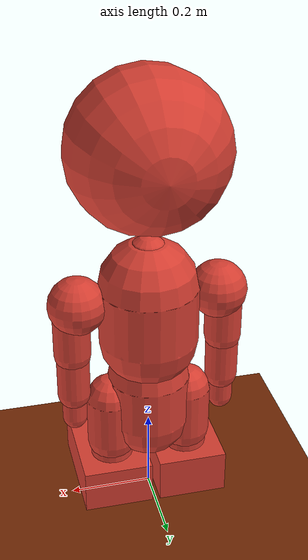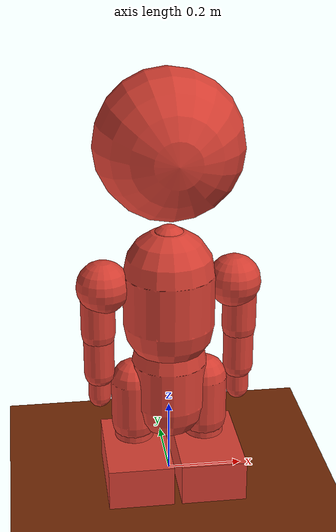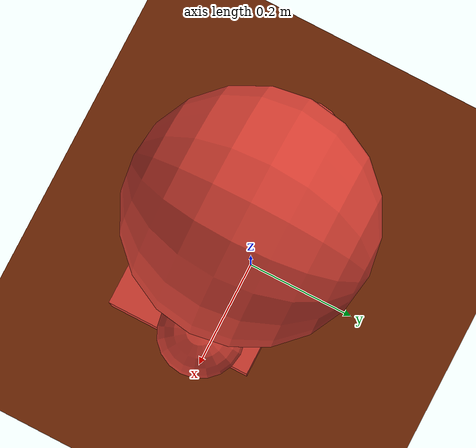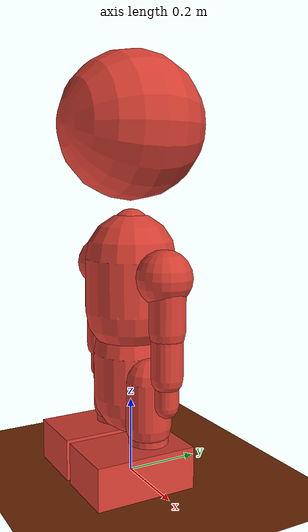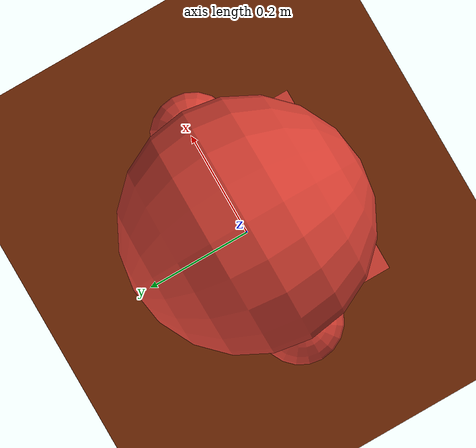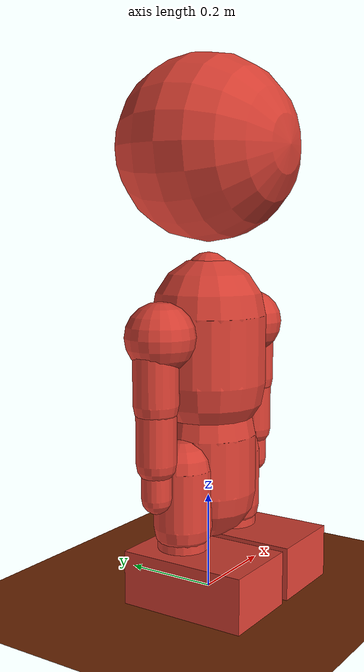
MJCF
<mujoco model="aBot humanoid (chibi, 1.22 m, single-source MJCF)">
  <!-- Generated by scripts/blender_humanoid/mjcf_generator.py from
       humanoid_spec.py (single procedural source of truth shared with
       build_humanoid.py). Do NOT hand-edit: regenerate instead. -->
  <compiler angle="radian" autolimits="true"/>
  <option timestep="0.002" integrator="implicitfast"/>
  <default>
    <geom condim="3" friction="1.0 0.005 0.0001" margin="0.002"/>
  </default>
  <worldbody>
    <geom name="floor" type="plane" size="3 3 0.05" rgba="0.45 0.16 0.02 1"
          friction="1.2 0.005 0.0001"/>
    <body name="root" pos="0.000000 0.000000 0.025000" quat="0.707107 0.707107 0.000000 0.000000">
      <freejoint name="root.free"/>
      <geom name="root_c0" density="276.427006" rgba="0.85 0.25 0.20 1" type="capsule" pos="0.000000 0.250000 0.000000" quat="0.707107 -0.707107 0.000000 0.000000" size="0.100000 0.060000"/>
      <body name="spine" pos="0.000000 0.240000 0.000000" quat="1.000000 0.000000 0.000000 0.000000">
        <joint name="spine.z" type="hinge" axis="0.000000 0.000000 1.000000" pos="0 0 0"
               range="-0.350000 0.350000" damping="1.500000" frictionloss="0.500000"
               armature="0.02"/>
        <joint name="spine.y" type="hinge" axis="0.000000 1.000000 0.000000" pos="0 0 0"
               range="-0.500000 0.500000" damping="1.500000" frictionloss="0.500000"
               armature="0.02"/>
        <joint name="spine.x" type="hinge" axis="1.000000 0.000000 0.000000" pos="0 0 0"
               range="-0.600000 0.600000" damping="1.500000" frictionloss="0.500000"
               armature="0.02"/>
        <geom name="spine_c0" density="114.617757" rgba="0.85 0.25 0.20 1" type="capsule" pos="0.000000 0.100000 0.000000" quat="0.707107 -0.707107 0.000000 0.000000" size="0.090000 0.060000"/>
        <body name="chest" pos="0.000000 0.160000 0.000000" quat="1.000000 0.000000 0.000000 0.000000">
          <joint name="chest.z" type="hinge" axis="0.000000 0.000000 1.000000" pos="0 0 0"
                 range="-0.350000 0.350000" damping="1.500000" frictionloss="0.500000"
                 armature="0.02"/>
          <joint name="chest.y" type="hinge" axis="0.000000 1.000000 0.000000" pos="0 0 0"
                 range="-0.500000 0.500000" damping="1.500000" frictionloss="0.500000"
                 armature="0.02"/>
          <joint name="chest.x" type="hinge" axis="1.000000 0.000000 0.000000" pos="0 0 0"
                 range="-0.600000 0.600000" damping="1.500000" frictionloss="0.500000"
                 armature="0.02"/>
          <geom name="chest_c0" density="117.892550" rgba="0.85 0.25 0.20 1" type="capsule" pos="0.000000 0.090000 0.000000" quat="0.707107 -0.707107 0.000000 0.000000" size="0.120000 0.070000"/>
          <body name="neck" pos="0.000000 0.180000 0.000000" quat="1.000000 0.000000 0.000000 0.000000">
            <joint name="neck.z" type="hinge" axis="0.000000 0.000000 1.000000" pos="0 0 0"
                   range="-0.350000 0.350000" damping="1.200000" frictionloss="0.050000"
                   armature="0.02"/>
            <joint name="neck.y" type="hinge" axis="0.000000 1.000000 0.000000" pos="0 0 0"
                   range="-0.600000 0.600000" damping="1.200000" frictionloss="0.050000"
                   armature="0.02"/>
            <joint name="neck.x" type="hinge" axis="1.000000 0.000000 0.000000" pos="0 0 0"
                   range="-0.500000 0.500000" damping="1.200000" frictionloss="0.050000"
                   armature="0.02"/>
            <geom name="neck_c0" density="134.813599" rgba="0.85 0.25 0.20 1" type="capsule" pos="0.000000 0.022500 0.000000" quat="0.707107 -0.707107 0.000000 0.000000" size="0.050000 0.037500"/>
            <body name="head" pos="0.000000 0.060000 0.000000" quat="1.000000 0.000000 0.000000 0.000000">
              <joint name="head.z" type="hinge" axis="0.000000 0.000000 1.000000" pos="0 0 0"
                     range="-0.450000 0.450000" damping="3.000000" frictionloss="0.050000"
                     armature="0.02"/>
              <joint name="head.y" type="hinge" axis="0.000000 1.000000 0.000000" pos="0 0 0"
                     range="-0.900000 0.900000" damping="3.000000" frictionloss="0.050000"
                     armature="0.02"/>
              <joint name="head.x" type="hinge" axis="1.000000 0.000000 0.000000" pos="0 0 0"
                     range="-0.700000 0.700000" damping="3.000000" frictionloss="0.050000"
                     armature="0.02"/>
              <geom name="head_c0" density="104.417152" rgba="0.85 0.25 0.20 1" type="sphere" pos="0.000000 0.260000 0.000000" size="0.190000"/>
            </body>
          </body>
          <body name="shoulder.L" pos="-0.040000 0.130000 0.000000" quat="0.500000 -0.500000 0.500000 0.500000">
            <joint name="shoulder.L.z" type="hinge" axis="0.000000 0.000000 1.000000" pos="0 0 0"
                   range="-0.600000 0.600000" damping="0.600000" frictionloss="0.250000"
                   armature="0.02"/>
            <joint name="shoulder.L.y" type="hinge" axis="0.000000 1.000000 0.000000" pos="0 0 0"
                   range="-0.500000 0.500000" damping="0.600000" frictionloss="0.250000"
                   armature="0.02"/>
            <joint name="shoulder.L.x" type="hinge" axis="1.000000 0.000000 0.000000" pos="0 0 0"
                   range="-0.700000 0.700000" damping="0.600000" frictionloss="0.250000"
                   armature="0.02"/>
            <geom name="shoulder.L_c0" density="83.521544" rgba="0.85 0.25 0.20 1" type="sphere" pos="0.000000 0.130000 0.000000" size="0.070000"/>
            <body name="upper_arm.L" pos="0.000000 0.145000 0.000000" quat="-0.500000 0.500000 -0.500000 0.500000">
              <joint name="upper_arm.L.z" type="hinge" axis="0.000000 0.000000 1.000000" pos="0 0 0"
                     range="-1.650000 1.650000" damping="0.800000" frictionloss="0.350000"
                     armature="0.02"/>
              <joint name="upper_arm.L.y" type="hinge" axis="0.000000 1.000000 0.000000" pos="0 0 0"
                     range="-0.450000 0.450000" damping="0.800000" frictionloss="0.350000"
                     armature="0.02"/>
              <joint name="upper_arm.L.x" type="hinge" axis="1.000000 0.000000 0.000000" pos="0 0 0"
                     range="-1.000000 1.400000" damping="0.800000" frictionloss="0.350000"
                     armature="0.02"/>
              <geom name="upper_arm.L_c0" density="297.386614" rgba="0.85 0.25 0.20 1" type="capsule" pos="0.000000 0.067500 0.000000" quat="0.707107 -0.707107 0.000000 0.000000" size="0.045000 0.062500"/>
              <body name="forearm.L" pos="0.000000 0.135000 0.000000" quat="1.000000 0.000000 0.000000 0.000000">
                <joint name="forearm.L.z" type="hinge" axis="0.000000 0.000000 1.000000" pos="0 0 0"
                       range="-1.650000 1.650000" damping="0.600000" frictionloss="0.300000"
                       armature="0.02"/>
                <joint name="forearm.L.y" type="hinge" axis="0.000000 1.000000 0.000000" pos="0 0 0"
                       range="-0.350000 0.350000" damping="0.600000" frictionloss="0.300000"
                       armature="0.02"/>
                <joint name="forearm.L.x" type="hinge" axis="1.000000 0.000000 0.000000" pos="0 0 0"
                       range="-0.300000 1.500000" damping="0.600000" frictionloss="0.300000"
                       armature="0.02"/>
                <geom name="forearm.L_c0" density="304.505631" rgba="0.85 0.25 0.20 1" type="capsule" pos="0.000000 0.055000 0.000000" quat="0.707107 -0.707107 0.000000 0.000000" size="0.040000 0.055000"/>
                <body name="hand.L" pos="0.000000 0.115000 0.000000" quat="1.000000 0.000000 0.000000 0.000000">
                  <joint name="hand.L.z" type="hinge" axis="0.000000 0.000000 1.000000" pos="0 0 0"
                         range="-0.600000 0.600000" damping="0.200000" frictionloss="0.100000"
                         armature="0.02"/>
                  <joint name="hand.L.y" type="hinge" axis="0.000000 1.000000 0.000000" pos="0 0 0"
                         range="-0.600000 0.600000" damping="0.200000" frictionloss="0.100000"
                         armature="0.02"/>
                  <joint name="hand.L.x" type="hinge" axis="1.000000 0.000000 0.000000" pos="0 0 0"
                         range="-0.600000 0.600000" damping="0.200000" frictionloss="0.100000"
                         armature="0.02"/>
                  <geom name="hand.L_c0" density="424.413182" rgba="0.85 0.25 0.20 1" type="capsule" pos="0.000000 0.035000 0.000000" quat="0.707107 -0.707107 0.000000 0.000000" size="0.030000 0.030000"/>
                </body>
              </body>
            </body>
          </body>
          <body name="shoulder.R" pos="0.040000 0.130000 0.000000" quat="-0.500000 0.500000 0.500000 0.500000">
            <joint name="shoulder.R.z" type="hinge" axis="0.000000 0.000000 1.000000" pos="0 0 0"
                   range="-0.600000 0.600000" damping="0.600000" frictionloss="0.250000"
                   armature="0.02"/>
            <joint name="shoulder.R.y" type="hinge" axis="0.000000 1.000000 0.000000" pos="0 0 0"
                   range="-0.500000 0.500000" damping="0.600000" frictionloss="0.250000"
                   armature="0.02"/>
            <joint name="shoulder.R.x" type="hinge" axis="1.000000 0.000000 0.000000" pos="0 0 0"
                   range="-0.700000 0.700000" damping="0.600000" frictionloss="0.250000"
                   armature="0.02"/>
            <geom name="shoulder.R_c0" density="83.521544" rgba="0.85 0.25 0.20 1" type="sphere" pos="0.000000 0.130000 0.000000" size="0.070000"/>
            <body name="upper_arm.R" pos="0.000000 0.145000 0.000000" quat="0.500000 -0.500000 -0.500000 0.500000">
              <joint name="upper_arm.R.z" type="hinge" axis="0.000000 0.000000 1.000000" pos="0 0 0"
                     range="-1.650000 1.650000" damping="0.800000" frictionloss="0.350000"
                     armature="0.02"/>
              <joint name="upper_arm.R.y" type="hinge" axis="0.000000 1.000000 0.000000" pos="0 0 0"
                     range="-0.450000 0.450000" damping="0.800000" frictionloss="0.350000"
                     armature="0.02"/>
              <joint name="upper_arm.R.x" type="hinge" axis="1.000000 0.000000 0.000000" pos="0 0 0"
                     range="-1.000000 1.400000" damping="0.800000" frictionloss="0.350000"
                     armature="0.02"/>
              <geom name="upper_arm.R_c0" density="297.386614" rgba="0.85 0.25 0.20 1" type="capsule" pos="0.000000 0.067500 0.000000" quat="0.707107 -0.707107 0.000000 0.000000" size="0.045000 0.062500"/>
              <body name="forearm.R" pos="0.000000 0.135000 0.000000" quat="1.000000 0.000000 0.000000 0.000000">
                <joint name="forearm.R.z" type="hinge" axis="0.000000 0.000000 1.000000" pos="0 0 0"
                       range="-1.650000 1.650000" damping="0.600000" frictionloss="0.300000"
                       armature="0.02"/>
                <joint name="forearm.R.y" type="hinge" axis="0.000000 1.000000 0.000000" pos="0 0 0"
                       range="-0.350000 0.350000" damping="0.600000" frictionloss="0.300000"
                       armature="0.02"/>
                <joint name="forearm.R.x" type="hinge" axis="1.000000 0.000000 0.000000" pos="0 0 0"
                       range="-0.300000 1.500000" damping="0.600000" frictionloss="0.300000"
                       armature="0.02"/>
                <geom name="forearm.R_c0" density="304.505631" rgba="0.85 0.25 0.20 1" type="capsule" pos="0.000000 0.055000 0.000000" quat="0.707107 -0.707107 0.000000 0.000000" size="0.040000 0.055000"/>
                <body name="hand.R" pos="0.000000 0.115000 0.000000" quat="1.000000 0.000000 0.000000 0.000000">
                  <joint name="hand.R.z" type="hinge" axis="0.000000 0.000000 1.000000" pos="0 0 0"
                         range="-0.600000 0.600000" damping="0.200000" frictionloss="0.100000"
                         armature="0.02"/>
                  <joint name="hand.R.y" type="hinge" axis="0.000000 1.000000 0.000000" pos="0 0 0"
                         range="-0.600000 0.600000" damping="0.200000" frictionloss="0.100000"
                         armature="0.02"/>
                  <joint name="hand.R.x" type="hinge" axis="1.000000 0.000000 0.000000" pos="0 0 0"
                         range="-0.600000 0.600000" damping="0.200000" frictionloss="0.100000"
                         armature="0.02"/>
                  <geom name="hand.R_c0" density="424.413182" rgba="0.85 0.25 0.20 1" type="capsule" pos="0.000000 0.035000 0.000000" quat="0.707107 -0.707107 0.000000 0.000000" size="0.030000 0.030000"/>
                </body>
              </body>
            </body>
          </body>
        </body>
      </body>
      <body name="thigh.L" pos="-0.095000 0.260000 0.000000" quat="0.000000 1.000000 0.000000 0.000000">
        <joint name="thigh.L.z" type="hinge" axis="0.000000 0.000000 1.000000" pos="0 0 0"
               range="-0.450000 0.450000" damping="1.500000" frictionloss="0.600000"
               armature="0.02"/>
        <joint name="thigh.L.y" type="hinge" axis="0.000000 1.000000 0.000000" pos="0 0 0"
               range="-0.350000 0.350000" damping="1.500000" frictionloss="0.600000"
               armature="0.02"/>
        <joint name="thigh.L.x" type="hinge" axis="1.000000 0.000000 0.000000" pos="0 0 0"
               range="-1.200000 1.300000" damping="1.500000" frictionloss="0.600000"
               armature="0.02"/>
        <geom name="thigh.L_c0" density="243.153385" rgba="0.85 0.25 0.20 1" type="capsule" pos="0.000000 0.065000 0.000000" quat="0.707107 -0.707107 0.000000 0.000000" size="0.060000 0.060000"/>
        <body name="shin.L" pos="0.000000 0.130000 0.000000" quat="1.000000 0.000000 0.000000 0.000000">
          <joint name="shin.L.z" type="hinge" axis="0.000000 0.000000 1.000000" pos="0 0 0"
                 range="-0.300000 0.300000" damping="1.200000" frictionloss="0.500000"
                 armature="0.02"/>
          <joint name="shin.L.y" type="hinge" axis="0.000000 1.000000 0.000000" pos="0 0 0"
                 range="-0.250000 0.250000" damping="1.200000" frictionloss="0.500000"
                 armature="0.02"/>
          <joint name="shin.L.x" type="hinge" axis="1.000000 0.000000 0.000000" pos="0 0 0"
                 range="-1.600000 0.080000" damping="1.200000" frictionloss="0.500000"
                 armature="0.02"/>
          <geom name="shin.L_c0" density="332.467587" rgba="0.85 0.25 0.20 1" type="capsule" pos="0.000000 0.050000 0.000000" quat="0.707107 -0.707107 0.000000 0.000000" size="0.052000 0.045000"/>
          <body name="foot.L" pos="0.000000 0.100000 0.000000" quat="0.802293 -0.596930 0.000000 0.000000">
            <joint name="foot.L.z" type="hinge" axis="0.000000 0.000000 1.000000" pos="0 0 0"
                   range="-0.350000 0.350000" damping="0.500000" frictionloss="0.250000"
                   armature="0.02"/>
            <joint name="foot.L.y" type="hinge" axis="0.000000 1.000000 0.000000" pos="0 0 0"
                   range="-0.300000 0.300000" damping="0.500000" frictionloss="0.250000"
                   armature="0.02"/>
            <joint name="foot.L.x" type="hinge" axis="1.000000 0.000000 0.000000" pos="0 0 0"
                   range="-0.600000 0.800000" damping="0.500000" frictionloss="0.250000"
                   armature="0.02"/>
            <geom name="foot.L_c0" density="198.059022" rgba="0.85 0.25 0.20 1" type="box" pos="0.000000 0.046455 -0.019157" quat="0.145213 0.989400 0.000000 0.000000" size="0.085000 0.135000 0.055000"/>
            <geom name="foot.L_c1" density="5729.577951" rgba="0.10 0.35 0.45 1" contype="0" conaffinity="0" group="3" type="sphere" pos="0.000000 0.049424 0.008142" size="0.050000"/>
          </body>
        </body>
      </body>
      <body name="thigh.R" pos="0.095000 0.260000 0.000000" quat="0.000000 1.000000 0.000000 0.000000">
        <joint name="thigh.R.z" type="hinge" axis="0.000000 0.000000 1.000000" pos="0 0 0"
               range="-0.450000 0.450000" damping="1.500000" frictionloss="0.600000"
               armature="0.02"/>
        <joint name="thigh.R.y" type="hinge" axis="0.000000 1.000000 0.000000" pos="0 0 0"
               range="-0.350000 0.350000" damping="1.500000" frictionloss="0.600000"
               armature="0.02"/>
        <joint name="thigh.R.x" type="hinge" axis="1.000000 0.000000 0.000000" pos="0 0 0"
               range="-1.200000 1.300000" damping="1.500000" frictionloss="0.600000"
               armature="0.02"/>
        <geom name="thigh.R_c0" density="243.153385" rgba="0.85 0.25 0.20 1" type="capsule" pos="0.000000 0.065000 0.000000" quat="0.707107 -0.707107 0.000000 0.000000" size="0.060000 0.060000"/>
        <body name="shin.R" pos="0.000000 0.130000 0.000000" quat="1.000000 0.000000 0.000000 0.000000">
          <joint name="shin.R.z" type="hinge" axis="0.000000 0.000000 1.000000" pos="0 0 0"
                 range="-0.300000 0.300000" damping="1.200000" frictionloss="0.500000"
                 armature="0.02"/>
          <joint name="shin.R.y" type="hinge" axis="0.000000 1.000000 0.000000" pos="0 0 0"
                 range="-0.250000 0.250000" damping="1.200000" frictionloss="0.500000"
                 armature="0.02"/>
          <joint name="shin.R.x" type="hinge" axis="1.000000 0.000000 0.000000" pos="0 0 0"
                 range="-1.600000 0.080000" damping="1.200000" frictionloss="0.500000"
                 armature="0.02"/>
          <geom name="shin.R_c0" density="332.467587" rgba="0.85 0.25 0.20 1" type="capsule" pos="0.000000 0.050000 0.000000" quat="0.707107 -0.707107 0.000000 0.000000" size="0.052000 0.045000"/>
          <body name="foot.R" pos="0.000000 0.100000 0.000000" quat="0.802293 -0.596930 0.000000 0.000000">
            <joint name="foot.R.z" type="hinge" axis="0.000000 0.000000 1.000000" pos="0 0 0"
                   range="-0.350000 0.350000" damping="0.500000" frictionloss="0.250000"
                   armature="0.02"/>
            <joint name="foot.R.y" type="hinge" axis="0.000000 1.000000 0.000000" pos="0 0 0"
                   range="-0.300000 0.300000" damping="0.500000" frictionloss="0.250000"
                   armature="0.02"/>
            <joint name="foot.R.x" type="hinge" axis="1.000000 0.000000 0.000000" pos="0 0 0"
                   range="-0.600000 0.800000" damping="0.500000" frictionloss="0.250000"
                   armature="0.02"/>
            <geom name="foot.R_c0" density="198.059022" rgba="0.85 0.25 0.20 1" type="box" pos="0.000000 0.046455 -0.019157" quat="0.145213 0.989400 0.000000 0.000000" size="0.085000 0.135000 0.055000"/>
            <geom name="foot.R_c1" density="5729.577951" rgba="0.10 0.35 0.45 1" contype="0" conaffinity="0" group="3" type="sphere" pos="0.000000 0.049424 0.008142" size="0.050000"/>
          </body>
        </body>
      </body>
    </body>
  </worldbody>
  <contact>
    <exclude body1="root" body2="chest"/>
    <exclude body1="root" body2="shin.L"/>
    <exclude body1="root" body2="shin.R"/>
    <exclude body1="root" body2="thigh.L"/>
    <exclude body1="root" body2="thigh.R"/>
    <exclude body1="spine" body2="thigh.L"/>
    <exclude body1="spine" body2="thigh.R"/>
    <exclude body1="thigh.L" body2="foot.L"/>
    <exclude body1="thigh.R" body2="foot.R"/>
    <exclude body1="forearm.L" body2="thigh.L"/>
    <exclude body1="forearm.R" body2="thigh.R"/>
    <exclude body1="hand.L" body2="thigh.L"/>
    <exclude body1="hand.R" body2="thigh.R"/>
  </contact>
  <actuator>
    <position name="servo_spine.z" joint="spine.z" kp="250.000000"
              ctrlrange="-0.350000 0.350000" forcelimited="true"
              forcerange="-80.000000 80.000000"/>
    <position name="servo_spine.y" joint="spine.y" kp="250.000000"
              ctrlrange="-0.500000 0.500000" forcelimited="true"
              forcerange="-80.000000 80.000000"/>
    <position name="servo_spine.x" joint="spine.x" kp="250.000000"
              ctrlrange="-0.600000 0.600000" forcelimited="true"
              forcerange="-80.000000 80.000000"/>
    <position name="servo_chest.z" joint="chest.z" kp="250.000000"
              ctrlrange="-0.350000 0.350000" forcelimited="true"
              forcerange="-80.000000 80.000000"/>
    <position name="servo_chest.y" joint="chest.y" kp="250.000000"
              ctrlrange="-0.500000 0.500000" forcelimited="true"
              forcerange="-80.000000 80.000000"/>
    <position name="servo_chest.x" joint="chest.x" kp="250.000000"
              ctrlrange="-0.600000 0.600000" forcelimited="true"
              forcerange="-80.000000 80.000000"/>
    <position name="servo_neck.z" joint="neck.z" kp="50.000000"
              ctrlrange="-0.350000 0.350000" forcelimited="true"
              forcerange="-20.000000 20.000000"/>
    <position name="servo_neck.y" joint="neck.y" kp="50.000000"
              ctrlrange="-0.600000 0.600000" forcelimited="true"
              forcerange="-20.000000 20.000000"/>
    <position name="servo_neck.x" joint="neck.x" kp="50.000000"
              ctrlrange="-0.500000 0.500000" forcelimited="true"
              forcerange="-20.000000 20.000000"/>
    <position name="servo_head.z" joint="head.z" kp="60.000000"
              ctrlrange="-0.450000 0.450000" forcelimited="true"
              forcerange="-20.000000 20.000000"/>
    <position name="servo_head.y" joint="head.y" kp="60.000000"
              ctrlrange="-0.900000 0.900000" forcelimited="true"
              forcerange="-20.000000 20.000000"/>
    <position name="servo_head.x" joint="head.x" kp="60.000000"
              ctrlrange="-0.700000 0.700000" forcelimited="true"
              forcerange="-20.000000 20.000000"/>
    <position name="servo_shoulder.L.z" joint="shoulder.L.z" kp="60.000000"
              ctrlrange="-0.600000 0.600000" forcelimited="true"
              forcerange="-25.000000 25.000000"/>
    <position name="servo_shoulder.L.y" joint="shoulder.L.y" kp="60.000000"
              ctrlrange="-0.500000 0.500000" forcelimited="true"
              forcerange="-25.000000 25.000000"/>
    <position name="servo_shoulder.L.x" joint="shoulder.L.x" kp="60.000000"
              ctrlrange="-0.700000 0.700000" forcelimited="true"
              forcerange="-25.000000 25.000000"/>
    <position name="servo_upper_arm.L.z" joint="upper_arm.L.z" kp="100.000000"
              ctrlrange="-1.650000 1.650000" forcelimited="true"
              forcerange="-40.000000 40.000000"/>
    <position name="servo_upper_arm.L.y" joint="upper_arm.L.y" kp="100.000000"
              ctrlrange="-0.450000 0.450000" forcelimited="true"
              forcerange="-40.000000 40.000000"/>
    <position name="servo_upper_arm.L.x" joint="upper_arm.L.x" kp="100.000000"
              ctrlrange="-1.000000 1.400000" forcelimited="true"
              forcerange="-40.000000 40.000000"/>
    <position name="servo_forearm.L.z" joint="forearm.L.z" kp="70.000000"
              ctrlrange="-1.650000 1.650000" forcelimited="true"
              forcerange="-30.000000 30.000000"/>
    <position name="servo_forearm.L.y" joint="forearm.L.y" kp="70.000000"
              ctrlrange="-0.350000 0.350000" forcelimited="true"
              forcerange="-30.000000 30.000000"/>
    <position name="servo_forearm.L.x" joint="forearm.L.x" kp="70.000000"
              ctrlrange="-0.300000 1.500000" forcelimited="true"
              forcerange="-30.000000 30.000000"/>
    <position name="servo_hand.L.z" joint="hand.L.z" kp="20.000000"
              ctrlrange="-0.600000 0.600000" forcelimited="true"
              forcerange="-8.000000 8.000000"/>
    <position name="servo_hand.L.y" joint="hand.L.y" kp="20.000000"
              ctrlrange="-0.600000 0.600000" forcelimited="true"
              forcerange="-8.000000 8.000000"/>
    <position name="servo_hand.L.x" joint="hand.L.x" kp="20.000000"
              ctrlrange="-0.600000 0.600000" forcelimited="true"
              forcerange="-8.000000 8.000000"/>
    <position name="servo_shoulder.R.z" joint="shoulder.R.z" kp="60.000000"
              ctrlrange="-0.600000 0.600000" forcelimited="true"
              forcerange="-25.000000 25.000000"/>
    <position name="servo_shoulder.R.y" joint="shoulder.R.y" kp="60.000000"
              ctrlrange="-0.500000 0.500000" forcelimited="true"
              forcerange="-25.000000 25.000000"/>
    <position name="servo_shoulder.R.x" joint="shoulder.R.x" kp="60.000000"
              ctrlrange="-0.700000 0.700000" forcelimited="true"
              forcerange="-25.000000 25.000000"/>
    <position name="servo_upper_arm.R.z" joint="upper_arm.R.z" kp="100.000000"
              ctrlrange="-1.650000 1.650000" forcelimited="true"
              forcerange="-40.000000 40.000000"/>
    <position name="servo_upper_arm.R.y" joint="upper_arm.R.y" kp="100.000000"
              ctrlrange="-0.450000 0.450000" forcelimited="true"
              forcerange="-40.000000 40.000000"/>
    <position name="servo_upper_arm.R.x" joint="upper_arm.R.x" kp="100.000000"
              ctrlrange="-1.000000 1.400000" forcelimited="true"
              forcerange="-40.000000 40.000000"/>
    <position name="servo_forearm.R.z" joint="forearm.R.z" kp="70.000000"
              ctrlrange="-1.650000 1.650000" forcelimited="true"
              forcerange="-30.000000 30.000000"/>
    <position name="servo_forearm.R.y" joint="forearm.R.y" kp="70.000000"
              ctrlrange="-0.350000 0.350000" forcelimited="true"
              forcerange="-30.000000 30.000000"/>
    <position name="servo_forearm.R.x" joint="forearm.R.x" kp="70.000000"
              ctrlrange="-0.300000 1.500000" forcelimited="true"
              forcerange="-30.000000 30.000000"/>
    <position name="servo_hand.R.z" joint="hand.R.z" kp="20.000000"
              ctrlrange="-0.600000 0.600000" forcelimited="true"
              forcerange="-8.000000 8.000000"/>
    <position name="servo_hand.R.y" joint="hand.R.y" kp="20.000000"
              ctrlrange="-0.600000 0.600000" forcelimited="true"
              forcerange="-8.000000 8.000000"/>
    <position name="servo_hand.R.x" joint="hand.R.x" kp="20.000000"
              ctrlrange="-0.600000 0.600000" forcelimited="true"
              forcerange="-8.000000 8.000000"/>
    <position name="servo_thigh.L.z" joint="thigh.L.z" kp="250.000000"
              ctrlrange="-0.450000 0.450000" forcelimited="true"
              forcerange="-90.000000 90.000000"/>
    <position name="servo_thigh.L.y" joint="thigh.L.y" kp="250.000000"
              ctrlrange="-0.350000 0.350000" forcelimited="true"
              forcerange="-90.000000 90.000000"/>
    <position name="servo_thigh.L.x" joint="thigh.L.x" kp="250.000000"
              ctrlrange="-1.200000 1.300000" forcelimited="true"
              forcerange="-90.000000 90.000000"/>
    <position name="servo_shin.L.z" joint="shin.L.z" kp="200.000000"
              ctrlrange="-0.300000 0.300000" forcelimited="true"
              forcerange="-80.000000 80.000000"/>
    <position name="servo_shin.L.y" joint="shin.L.y" kp="200.000000"
              ctrlrange="-0.250000 0.250000" forcelimited="true"
              forcerange="-80.000000 80.000000"/>
    <position name="servo_shin.L.x" joint="shin.L.x" kp="200.000000"
              ctrlrange="-1.600000 0.080000" forcelimited="true"
              forcerange="-80.000000 80.000000"/>
    <position name="servo_foot.L.z" joint="foot.L.z" kp="60.000000"
              ctrlrange="-0.350000 0.350000" forcelimited="true"
              forcerange="-25.000000 25.000000"/>
    <position name="servo_foot.L.y" joint="foot.L.y" kp="60.000000"
              ctrlrange="-0.300000 0.300000" forcelimited="true"
              forcerange="-25.000000 25.000000"/>
    <position name="servo_foot.L.x" joint="foot.L.x" kp="60.000000"
              ctrlrange="-0.600000 0.800000" forcelimited="true"
              forcerange="-25.000000 25.000000"/>
    <position name="servo_thigh.R.z" joint="thigh.R.z" kp="250.000000"
              ctrlrange="-0.450000 0.450000" forcelimited="true"
              forcerange="-90.000000 90.000000"/>
    <position name="servo_thigh.R.y" joint="thigh.R.y" kp="250.000000"
              ctrlrange="-0.350000 0.350000" forcelimited="true"
              forcerange="-90.000000 90.000000"/>
    <position name="servo_thigh.R.x" joint="thigh.R.x" kp="250.000000"
              ctrlrange="-1.200000 1.300000" forcelimited="true"
              forcerange="-90.000000 90.000000"/>
    <position name="servo_shin.R.z" joint="shin.R.z" kp="200.000000"
              ctrlrange="-0.300000 0.300000" forcelimited="true"
              forcerange="-80.000000 80.000000"/>
    <position name="servo_shin.R.y" joint="shin.R.y" kp="200.000000"
              ctrlrange="-0.250000 0.250000" forcelimited="true"
              forcerange="-80.000000 80.000000"/>
    <position name="servo_shin.R.x" joint="shin.R.x" kp="200.000000"
              ctrlrange="-1.600000 0.080000" forcelimited="true"
              forcerange="-80.000000 80.000000"/>
    <position name="servo_foot.R.z" joint="foot.R.z" kp="60.000000"
              ctrlrange="-0.350000 0.350000" forcelimited="true"
              forcerange="-25.000000 25.000000"/>
    <position name="servo_foot.R.y" joint="foot.R.y" kp="60.000000"
              ctrlrange="-0.300000 0.300000" forcelimited="true"
              forcerange="-25.000000 25.000000"/>
    <position name="servo_foot.R.x" joint="foot.R.x" kp="60.000000"
              ctrlrange="-0.600000 0.800000" forcelimited="true"
              forcerange="-25.000000 25.000000"/>
  </actuator>
  <keyframe>
    <key name="home" qpos="0.000000 0.000000 0.025000 0.707107 0.707107 0.000000 0.000000 0.000000 0.000000 0.000000 0.000000 0.000000 0.000000 0.000000 0.000000 0.000000 0.000000 0.000000 0.000000 0.000000 0.000000 0.000000 0.000000 0.000000 0.000000 0.000000 0.000000 0.000000 0.000000 0.000000 0.000000 0.000000 0.000000 0.000000 0.000000 0.000000 0.000000 0.000000 0.000000 0.000000 0.000000 0.000000 0.000000 0.000000 0.000000 0.000000 0.000000 0.000000 0.000000 0.000000 0.000000 0.000000 0.000000 0.000000 0.000000 0.000000 0.000000 0.000000 0.000000 0.000000 0.000000"/>
  </keyframe>
</mujoco>
